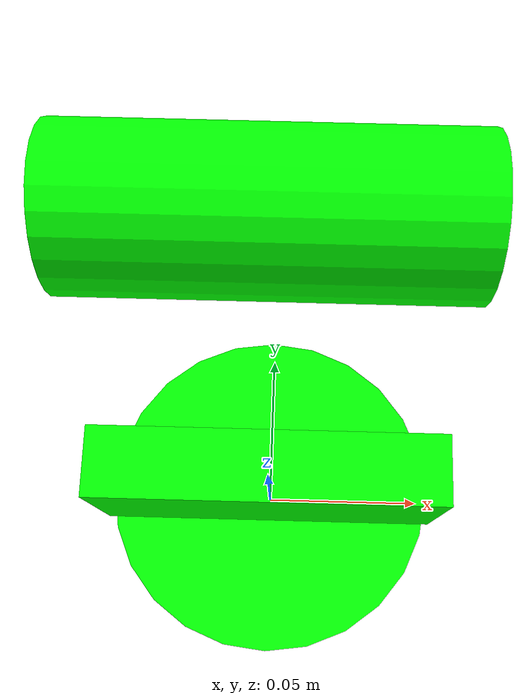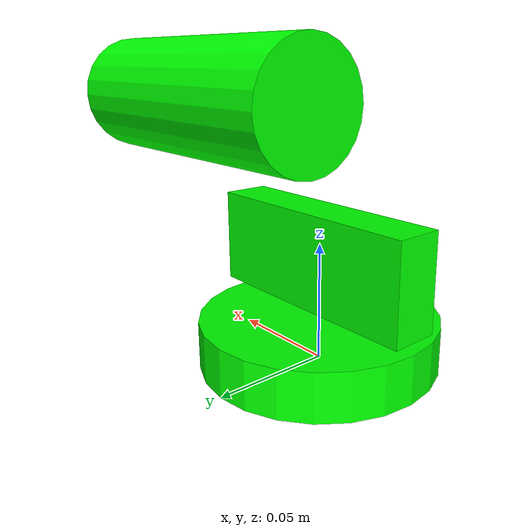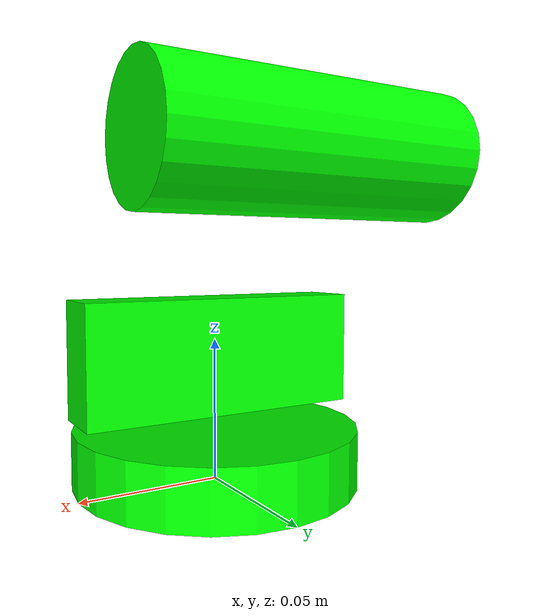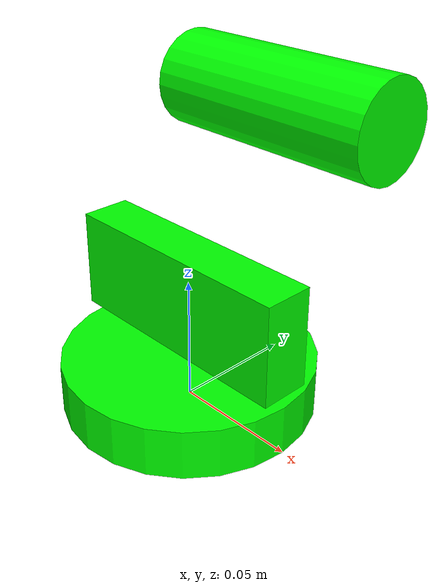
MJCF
<mujoco model="robot">
	<compiler angle="degree" coordinate="local" inertiafromgeom="true"/>
  	<option integrator="RK4" timestep="0.002"/>
  	<worldbody>

    	<!-- robot model -->
    	<body name="robot" pos="0 0 0.01">
    		<geom name="base" type="cylinder" size="0.05 0.01" rgba="0.0 1.0 0.0 1" pos="0 0 0" friction="10 0.1 0.1"/>
    		<!-- sliding joints in the plane to model omnidirectional motion -->
    		<joint axis="1 0 0" name="robot_x" pos="0 0 0" type="slide"/>
            <joint axis="0 1 0" name="robot_y" pos="0 0 0" type="slide"/>
            <joint axis="0 0 1" name="robot_turn" pos="0 0 0" type="hinge"/>

			<!-- kick mechanical model -->
			<body name="kick" pos="0 0 0.035">
				<geom type="box" size="0.05 0.01 0.02" rgba="0.0 1.0 0.0 1" pos="0 0 0"/>
				<joint name="kick" type="slide" pos="0 0 0" axis="0 1 0" range="-0.05 0.05" limited="true"/>
				<inertial pos="0 0 0" mass="1"/>
			</body>

			<!-- Dribbler mechanical model -->
			<body name="dribbler" pos="0 0.05 0.1" quat="1 0 1 0">
				<geom type="cylinder" size="0.02 0.05" rgba="0.0 1.0 0.0 1" pos="0 0 0" friction="10 0.1 0.1"/>
				<joint name="dribbler" type="hinge" pos="0 0 0" axis="0 0 1"/>
				<inertial pos="0 0 0" mass="10"/>
			</body>

			<inertial pos="0 0 0" mass="100"/>

    	</body>

	</worldbody>
</mujoco>
